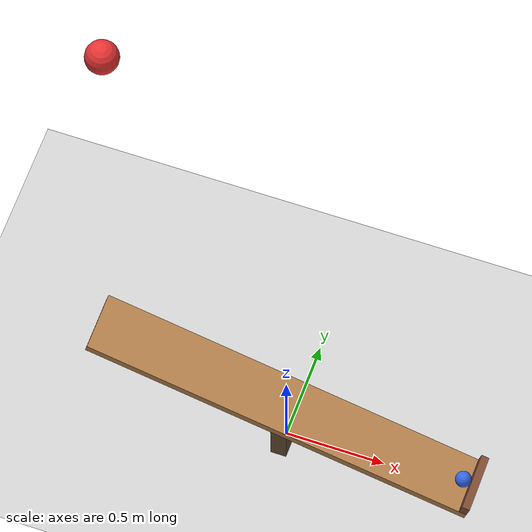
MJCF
<mujoco model="seesaw_launch">
  <option timestep="0.002" gravity="0 0 -9.81"/>

  <worldbody>
    <light name="sun" pos="0 0 5" dir="0 0 -1" directional="true"/>
    <geom name="floor" type="plane" size="5 5 0.1" pos="0 0 0" rgba="0.8 0.8 0.8 1"/>

    <!-- visual fulcrum stand (non-colliding) -->
    <geom name="fulcrum" type="box" size="0.04 0.12 0.12" pos="0 0 0.12" contype="0" conaffinity="0" rgba="0.4 0.3 0.2 1"/>

    <!-- seesaw: pivot at z=0.278, tilted 15 deg so the +x end rests on the floor -->
    <body name="seesaw" pos="0 0 0.278" euler="0 15 0">
      <joint name="pivot" type="hinge" axis="0 1 0" pos="0 0 0" damping="0.01"/>
      <geom name="plank" type="box" size="1.0 0.15 0.02" mass="0.5" rgba="0.7 0.5 0.3 1"/>
      <geom name="lip" type="box" size="0.02 0.15 0.03" pos="0.98 0 0.05" mass="0.02" rgba="0.5 0.3 0.2 1"/>
    </body>

    <!-- 100 g ball resting on the low end against the lip -->
    <body name="ball" pos="0.9042 0 0.0985">
      <freejoint name="ball_free"/>
      <geom name="ball" type="sphere" size="0.04" mass="0.1" rgba="0.2 0.4 0.9 1"/>
    </body>

    <!-- 1 kg weight dropped from rest above the high end -->
    <body name="weight" pos="-0.86 0 3.0">
      <freejoint name="weight_free"/>
      <geom name="weight" type="sphere" size="0.08" mass="1.0" rgba="0.9 0.2 0.2 1"/>
    </body>
  </worldbody>
</mujoco>
